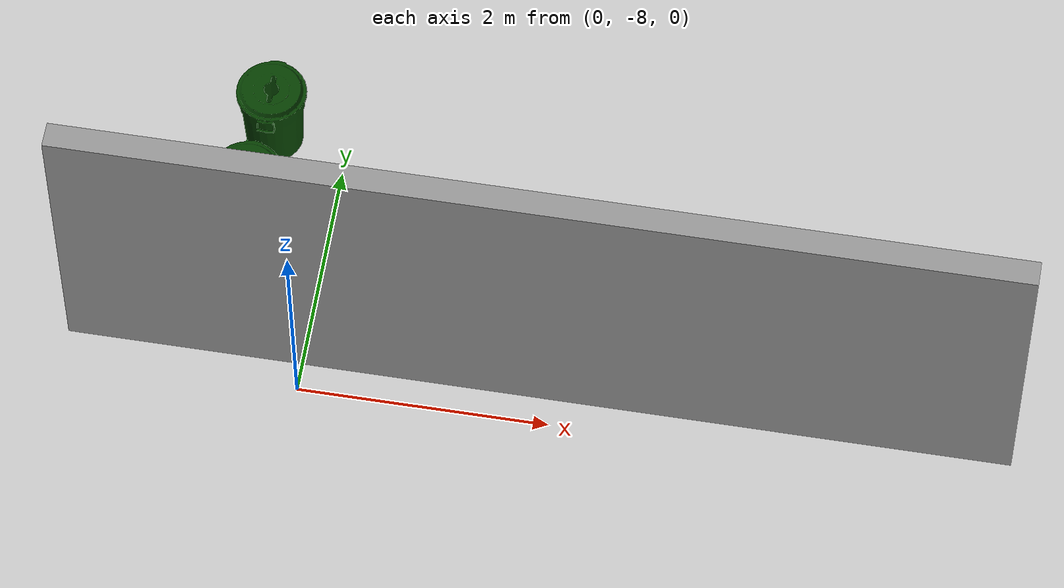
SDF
<sdf version="1.6">
 <world name="default">
  <light name="sun" type="directional">
   <pose>0 0 10 0 -0 0</pose>
   <diffuse>0.8 0.8 0.8 1</diffuse>
   <specular>0.1 0.1 0.1 1</specular>
   <attenuation>
    <range>1000</range>
    <constant>0.9</constant>
    <linear>0.01</linear>
    <quadratic>0.001</quadratic>
   </attenuation>
   <direction>-0.5 0.5 -1</direction>
  </light>
  <model name="ground_plane">
   <static>1</static>
   <link name="link">
    <collision name="collision">
     <geometry><plane><normal>0 0 1</normal><size>100 100</size></plane></geometry>
     <surface><friction><ode><mu>100</mu><mu2>50</mu2></ode></friction></surface>
    </collision>
    <visual name="visual">
     <cast_shadows>0</cast_shadows>
     <geometry><plane><normal>0 0 1</normal><size>100 100</size></plane></geometry>
     <material>
      <script><uri>file://media/materials/scripts/gazebo.material</uri><name>Gazebo/Grey</name></script>
     </material>
     <transparency>0.7</transparency>
    </visual>
   </link>
  </model>
  <gravity>0 0 -9.8</gravity>
  <magnetic_field>6e-06 2.3e-05 -4.2e-05</magnetic_field>
  <atmosphere type="adiabatic"/>
  <physics name="default_physics" default="0" type="ode">
   <max_step_size>0.001</max_step_size>
   <real_time_factor>1</real_time_factor>
   <real_time_update_rate>1000</real_time_update_rate>
  </physics>
  <scene><ambient>0.4 0.4 0.4 1</ambient><background>0.7 0.7 0.7 1</background><shadows>1</shadows></scene>
  <spherical_coordinates>
   <surface_model>EARTH_WGS84</surface_model>
   <latitude_deg>0</latitude_deg>
   <longitude_deg>0</longitude_deg>
   <elevation>0</elevation>
   <heading_deg>0</heading_deg>
  </spherical_coordinates>
  <model name="grey_wall">
   <static>1</static>
   <link name="link">
    <pose>0 0 1.4 0 -0 0</pose>
    <collision name="collision"><geometry><box><size>7.5 0.2 2.8</size></box></geometry></collision>
    <visual name="visual">
     <cast_shadows>0</cast_shadows>
     <geometry><box><size>7.5 0.2 2.8</size></box></geometry>
     <material>
      <script>
       <uri>model://grey_wall/materials/scripts</uri>
       <uri>model://grey_wall/materials/textures</uri>
       <name>vrc/grey_wall</name>
      </script>
     </material>
    </visual>
   </link>
   <pose>1.87037 -7.67 0 0 -0 0</pose>
  </model>
  <model name="first_2015_trash_can">
   <link name="link">
    <inertial>
     <pose>0 0 0.3683 0 -0 0</pose>
     <mass>4.83076</mass>
     <inertia>
      <ixx>0.281534</ixx>
      <ixy>0</ixy>
      <ixz>0</ixz>
      <iyy>0.281534</iyy>
      <iyz>0</iyz>
      <izz>0.126223</izz>
     </inertia>
    </inertial>
    <visual name="visual">
     <geometry>
      <mesh><uri>model://first_2015_trash_can/meshes/trash_can.dae</uri><scale>1 1 1</scale></mesh>
     </geometry>
    </visual>
    <collision name="collision">
     <geometry>
      <mesh><uri>model://first_2015_trash_can/meshes/trash_can.dae</uri><scale>1 1 1</scale></mesh>
     </geometry>
    </collision>
   </link>
   <pose>-0.635875 -7.23138 -3e-06 -6e-06 -9e-06 -0.001946</pose>
  </model>
  <model name="first_2015_trash_can_0">
   <link name="link">
    <inertial>
     <pose>0 0 0.3683 0 -0 0</pose>
     <mass>4.83076</mass>
     <inertia>
      <ixx>0.281534</ixx>
      <ixy>0</ixy>
      <ixz>0</ixz>
      <iyy>0.281534</iyy>
      <iyz>0</iyz>
      <izz>0.126223</izz>
     </inertia>
    </inertial>
    <visual name="visual">
     <geometry>
      <mesh><uri>model://first_2015_trash_can/meshes/trash_can.dae</uri><scale>1 1 1</scale></mesh>
     </geometry>
    </visual>
    <collision name="collision">
     <geometry>
      <mesh><uri>model://first_2015_trash_can/meshes/trash_can.dae</uri><scale>1 1 1</scale></mesh>
     </geometry>
    </collision>
   </link>
   <pose>-0.650134 -6.51079 -4e-06 1e-06 3e-06 -0.001914</pose>
  </model>
  <model name="first_2015_trash_can_1">
   <link name="link">
    <inertial>
     <pose>0 0 0.3683 0 -0 0</pose>
     <mass>4.83076</mass>
     <inertia>
      <ixx>0.281534</ixx>
      <ixy>0</ixy>
      <ixz>0</ixz>
      <iyy>0.281534</iyy>
      <iyz>0</iyz>
      <izz>0.126223</izz>
     </inertia>
    </inertial>
    <visual name="visual">
     <geometry>
      <mesh><uri>model://first_2015_trash_can/meshes/trash_can.dae</uri><scale>1 1 1</scale></mesh>
     </geometry>
    </visual>
    <collision name="collision">
     <geometry>
      <mesh><uri>model://first_2015_trash_can/meshes/trash_can.dae</uri><scale>1 1 1</scale></mesh>
     </geometry>
    </collision>
   </link>
   <pose>-0.597949 -5.74463 -1e-06 3e-06 1.9e-05 -0.00201</pose>
  </model>
 </world>
</sdf>
